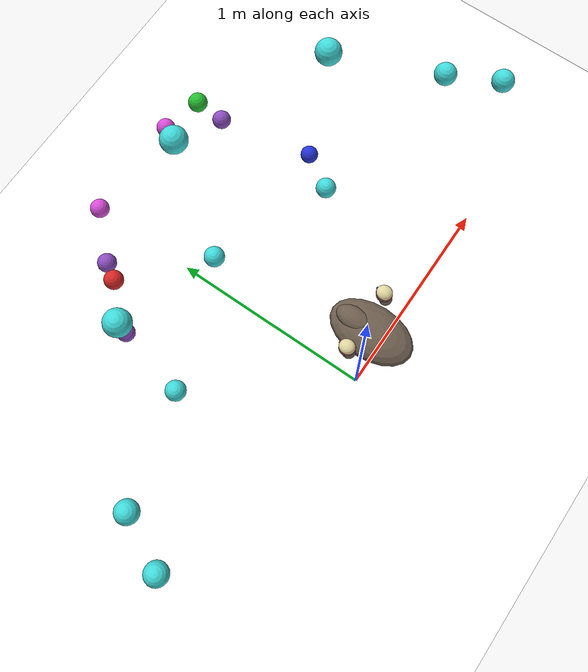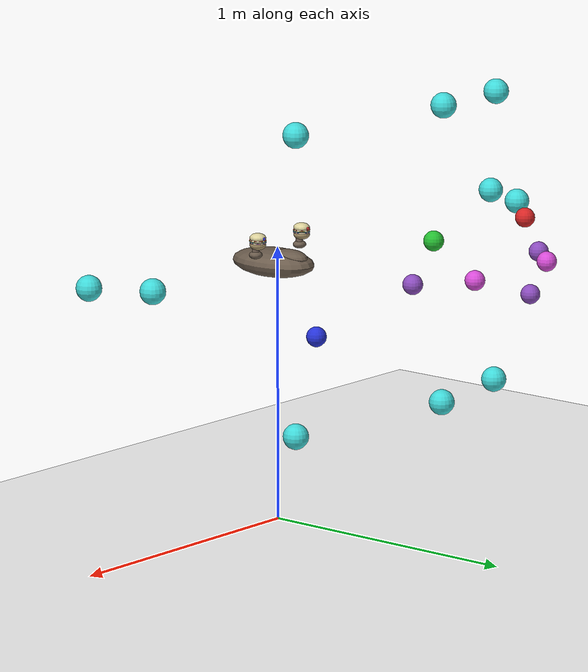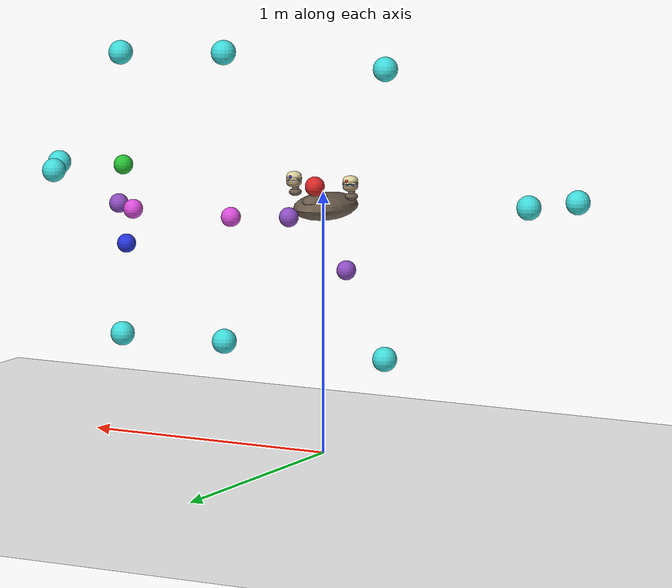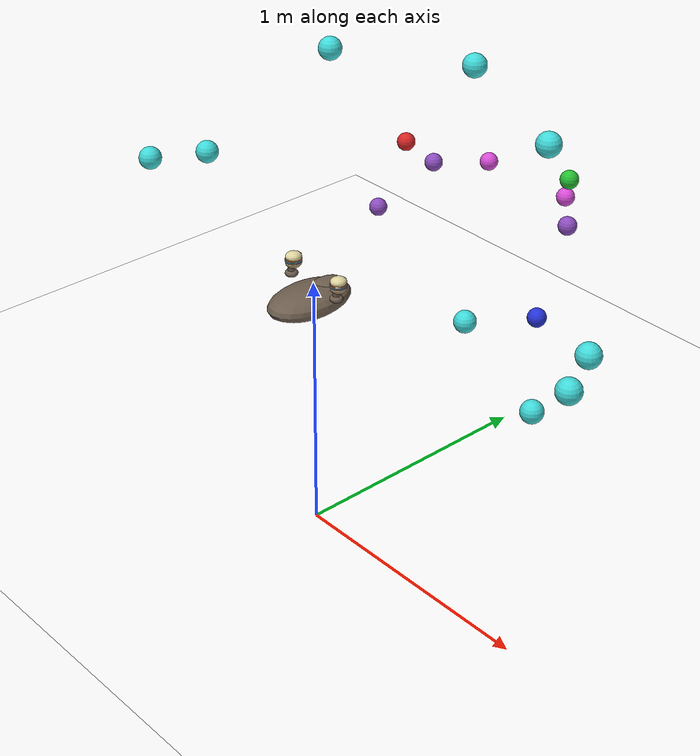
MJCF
<mujoco model="stomatopod_eyes_hard">

  <compiler angle="radian" coordinate="local" autolimits="true"/>

  <option timestep="0.002"
          gravity="0 0 0"
          integrator="implicitfast"/>

  <visual>
    <global offwidth="1024" offheight="768"/>
    <quality shadowsize="4096"/>
  </visual>

  <default>
    <geom contype="0" conaffinity="0" group="1"/>
    <joint armature="0.001" damping="0.10"/>
    <motor ctrllimited="true" ctrlrange="-1.0 1.0" gear="1"/>
    <site size="0.015" rgba="0 1 0 1"/>
  </default>

  <asset>
    <texture name="skybox" type="skybox" builtin="gradient"
             rgb1="0.55 0.62 0.72" rgb2="0.18 0.20 0.27"
             width="256" height="256"/>
    <texture name="groundplane" type="2d" builtin="checker"
             rgb1="0.32 0.34 0.38" rgb2="0.20 0.22 0.25"
             width="512" height="512" mark="cross" markrgb="0.45 0.48 0.52"/>
    <material name="groundplane" texture="groundplane"
              texuniform="true" texrepeat="6 6" reflectance="0.05"/>

    <material name="carapace" rgba="0.42 0.36 0.30 1"
              specular="0.15" shininess="0.20" reflectance="0.02"/>
    <material name="eyeball"  rgba="0.93 0.87 0.72 1"
              specular="0.35" shininess="0.55" reflectance="0.05"/>
    <material name="midband"  rgba="0.16 0.10 0.08 1"
              specular="0.10" shininess="0.20"/>
    <material name="ventral"  rgba="0.70 0.60 0.48 1"
              specular="0.25" shininess="0.30"/>
    <material name="eye_L_id" rgba="0.85 0.20 0.20 1"
              specular="0.35" shininess="0.55"/>
    <material name="eye_R_id" rgba="0.20 0.20 0.85 1"
              specular="0.35" shininess="0.55"/>

    <material name="eye_dorsal"  rgba="0.87 0.83 0.62 1"
              specular="0.35" shininess="0.55" reflectance="0.05"/>
    <material name="eye_ventral" rgba="0.64 0.56 0.40 1"
              specular="0.30" shininess="0.45" reflectance="0.04"/>

    <material name="midband_base" rgba="0.09 0.07 0.06 1"
              specular="0.10" shininess="0.20"/>
    <material name="mb_row1" rgba="0.82 0.17 0.15 1" specular="0.25" shininess="0.35"/>
    <material name="mb_row2" rgba="0.90 0.55 0.16 1" specular="0.25" shininess="0.35"/>
    <material name="mb_row3" rgba="0.32 0.70 0.26 1" specular="0.25" shininess="0.35"/>
    <material name="mb_row4" rgba="0.18 0.38 0.82 1" specular="0.25" shininess="0.35"/>
    <material name="mb_row5" rgba="0.20 0.82 0.78 1" specular="0.70" shininess="0.85" reflectance="0.25"/>
    <material name="mb_row6" rgba="0.80 0.32 0.84 1" specular="0.70" shininess="0.85" reflectance="0.25"/>

    <!-- Segmented eyestalk that carries the eye. Cosmetic. -->
    <material name="eyestalk" rgba="0.44 0.37 0.32 1"
              specular="0.20" shininess="0.30"/>
  </asset>

    <worldbody>

    <geom name="floor" pos="0 0 0" size="3 3 0.05" type="plane"
          material="groundplane" rgba="1 1 1 1"
          contype="0" conaffinity="0"/>

    <!-- Three-light setup: key (high front-left, casts shadows), fill
         (lower right, no shadows), back (rim from behind). -->
    <light name="key_light"   pos="-0.8  -1.2  2.4" dir="0.3 0.7 -0.8"
           diffuse="0.55 0.55 0.55" specular="0.25 0.25 0.25"
           castshadow="true"/>
    <light name="fill_light"  pos=" 1.4  -0.8  1.8" dir="-0.4 0.5 -0.6"
           diffuse="0.32 0.32 0.34" specular="0.10 0.10 0.10"
           castshadow="false"/>
    <light name="back_light"  pos=" 0.0   1.6  2.2" dir="0 -0.7 -0.8"
           diffuse="0.18 0.20 0.24" specular="0.05 0.05 0.05"
           castshadow="false"/>

<!-- ===================== HEAD + EYES (unchanged) ==================== -->
    <!-- overview: high 3/4 view — best "what's going on" angle -->
    <camera name="overview"
            pos="0 -1.6 1.7"
            xyaxes="1 0 0  0 0.275 0.962"
            fovy="45"/>
    <!-- cinematic: side-front hero shot, low angle, foregrounds the head -->
    <camera name="cinematic"
            pos="0.9 -1.0 1.20"
            xyaxes="0.789 0.614 0  -0.054 0.069 0.996"
            fovy="42"/>
    <!-- close_left / close_right: tight on each eye tower for FoV overlays -->
    <camera name="close_left"
            pos="-0.45 -0.55 1.20"
            xyaxes="0.915 -0.403 0  0.073 0.165 0.984"
            fovy="35"/>
    <camera name="close_right"
            pos="0.45 -0.55 1.20"
            xyaxes="0.915 0.403 0  -0.073 0.165 0.984"
            fovy="35"/>

    <body name="head" pos="0 0 1.0">

      <geom name="head_carapace"
            type="ellipsoid" size="0.105 0.170 0.050"
            pos="0 -0.020 -0.058"
            material="carapace"
            contype="0" conaffinity="0"/>
      <!-- Rostral plate: the pointed shield between the two eyestalks. -->
      <geom name="head_rostrum"
            type="ellipsoid" size="0.045 0.075 0.028"
            pos="0 0.055 -0.030"
            material="carapace"
            contype="0" conaffinity="0"/>
      <!-- Sockets where each eyestalk emerges from the carapace. -->
      <geom name="head_socket_L"
            type="ellipsoid" size="0.024 0.024 0.014"
            pos="-0.12 0 -0.010"
            material="carapace"
            contype="0" conaffinity="0"/>
      <geom name="head_socket_R"
            type="ellipsoid" size="0.024 0.024 0.014"
            pos="0.12 0 -0.010"
            material="carapace"
            contype="0" conaffinity="0"/>

      <body name="eye_L_yaw_link" pos="-0.12 0 0">
        <joint name="eye_L_yaw"   type="hinge" axis="0 0 1"
               range="-1.57 1.57"/>
        <!-- Short stalk cylinder (visible even when the eye is at rest) -->
        <geom  name="eye_L_yaw_geom"
               type="cylinder" size="0.013 0.020"
               material="eyestalk"
               contype="0" conaffinity="0"/>

        <body name="eye_L_pitch_link" pos="0 0 0.020">
          <joint name="eye_L_pitch" type="hinge" axis="0 1 0"
                 range="-1.05 1.05"/>
          <geom  name="eye_L_pitch_geom"
                 type="cylinder" size="0.011 0.020"
                 material="eyestalk"
                 contype="0" conaffinity="0"/>

          <body name="eye_L" pos="0 0 0.020">
            <joint name="eye_L_roll" type="hinge" axis="1 0 0"
                   range="-3.14 3.14"/>

            <!-- Smooth base sphere so the eye is always solid. -->
            <geom name="eye_L_ball"
                  type="ellipsoid" size="0.028 0.030 0.028"
                  pos="0 0.010 0"
                  material="eyeball"
                  contype="0" conaffinity="0"/>

            <!-- Dorsal hemisphere cap (lighter/greener): the DH. -->
            <geom name="eye_L_dorsal"
                  type="ellipsoid" size="0.0284 0.0304 0.0175"
                  pos="0 0.010 0.0125"
                  material="eye_dorsal"
                  contype="0" conaffinity="0"/>

            <!-- Ventral hemisphere cap (darker): the VH. -->
            <geom name="eye_L_ventral"
                  type="ellipsoid" size="0.0284 0.0304 0.0175"
                  pos="0 0.010 -0.0125"
                  material="eye_ventral"
                  contype="0" conaffinity="0"/>

            <!-- Dark base stripe the six rows sit on (fills the gaps so
                 the inter-row boundaries read as thin dark lines). -->
            <geom name="eye_L_midband_base"
                  type="ellipsoid" size="0.0286 0.0306 0.0072"
                  pos="0 0.010 0"
                  material="midband_base"
                  contype="0" conaffinity="0"/>

            <!-- The six midband rows, dorsal (row1) to ventral (row6).
                 Rows 1-4 are the spectral rows; rows 5-6 the polarisation
                 (quarter-wave / circular-polarisation) rows. -->
            <geom name="eye_L_mb_row1" type="ellipsoid" size="0.0292 0.0312 0.00085"
                  pos="0 0.010  0.00542" material="mb_row1" contype="0" conaffinity="0"/>
            <geom name="eye_L_mb_row2" type="ellipsoid" size="0.0292 0.0312 0.00085"
                  pos="0 0.010  0.00325" material="mb_row2" contype="0" conaffinity="0"/>
            <geom name="eye_L_mb_row3" type="ellipsoid" size="0.0292 0.0312 0.00085"
                  pos="0 0.010  0.00108" material="mb_row3" contype="0" conaffinity="0"/>
            <geom name="eye_L_mb_row4" type="ellipsoid" size="0.0292 0.0312 0.00085"
                  pos="0 0.010 -0.00108" material="mb_row4" contype="0" conaffinity="0"/>
            <geom name="eye_L_mb_row5" type="ellipsoid" size="0.0292 0.0312 0.00085"
                  pos="0 0.010 -0.00325" material="mb_row5" contype="0" conaffinity="0"/>
            <geom name="eye_L_mb_row6" type="ellipsoid" size="0.0292 0.0312 0.00085"
                  pos="0 0.010 -0.00542" material="mb_row6" contype="0" conaffinity="0"/>

            <geom name="eye_L_id_spot"
                  type="sphere" size="0.006"
                  pos="0 0.038 0.012"
                  material="eye_L_id"
                  contype="0" conaffinity="0"/>

            <!-- Two sites read by sensor.py (do not move these):
                 - eye_L_center: gimbal centre for Jacobians.
                 - eye_L_axis:   1 cm ahead; defines forward vector. -->
            <site name="eye_L_center" pos="0 0 0"      rgba="0 1 0 0"/>
            <site name="eye_L_axis"   pos="0 0.05 0"   rgba="1 1 0 0"/>
          </body>
        </body>
      </body>

      <body name="eye_R_yaw_link" pos="0.12 0 0">
        <joint name="eye_R_yaw"   type="hinge" axis="0 0 1"
               range="-1.57 1.57"/>
        <!-- Short stalk cylinder (visible even when the eye is at rest) -->
        <geom  name="eye_R_yaw_geom"
               type="cylinder" size="0.013 0.020"
               material="eyestalk"
               contype="0" conaffinity="0"/>

        <body name="eye_R_pitch_link" pos="0 0 0.020">
          <joint name="eye_R_pitch" type="hinge" axis="0 1 0"
                 range="-1.05 1.05"/>
          <geom  name="eye_R_pitch_geom"
                 type="cylinder" size="0.011 0.020"
                 material="eyestalk"
                 contype="0" conaffinity="0"/>

          <body name="eye_R" pos="0 0 0.020">
            <joint name="eye_R_roll" type="hinge" axis="1 0 0"
                   range="-3.14 3.14"/>

            <!-- Smooth base sphere so the eye is always solid. -->
            <geom name="eye_R_ball"
                  type="ellipsoid" size="0.028 0.030 0.028"
                  pos="0 0.010 0"
                  material="eyeball"
                  contype="0" conaffinity="0"/>

            <!-- Dorsal hemisphere cap (lighter/greener): the DH. -->
            <geom name="eye_R_dorsal"
                  type="ellipsoid" size="0.0284 0.0304 0.0175"
                  pos="0 0.010 0.0125"
                  material="eye_dorsal"
                  contype="0" conaffinity="0"/>

            <!-- Ventral hemisphere cap (darker): the VH. -->
            <geom name="eye_R_ventral"
                  type="ellipsoid" size="0.0284 0.0304 0.0175"
                  pos="0 0.010 -0.0125"
                  material="eye_ventral"
                  contype="0" conaffinity="0"/>

            <!-- Dark base stripe the six rows sit on (fills the gaps so
                 the inter-row boundaries read as thin dark lines). -->
            <geom name="eye_R_midband_base"
                  type="ellipsoid" size="0.0286 0.0306 0.0072"
                  pos="0 0.010 0"
                  material="midband_base"
                  contype="0" conaffinity="0"/>

            <!-- The six midband rows, dorsal (row1) to ventral (row6).
                 Rows 1-4 are the spectral rows; rows 5-6 the polarisation
                 (quarter-wave / circular-polarisation) rows. -->
            <geom name="eye_R_mb_row1" type="ellipsoid" size="0.0292 0.0312 0.00085"
                  pos="0 0.010  0.00542" material="mb_row1" contype="0" conaffinity="0"/>
            <geom name="eye_R_mb_row2" type="ellipsoid" size="0.0292 0.0312 0.00085"
                  pos="0 0.010  0.00325" material="mb_row2" contype="0" conaffinity="0"/>
            <geom name="eye_R_mb_row3" type="ellipsoid" size="0.0292 0.0312 0.00085"
                  pos="0 0.010  0.00108" material="mb_row3" contype="0" conaffinity="0"/>
            <geom name="eye_R_mb_row4" type="ellipsoid" size="0.0292 0.0312 0.00085"
                  pos="0 0.010 -0.00108" material="mb_row4" contype="0" conaffinity="0"/>
            <geom name="eye_R_mb_row5" type="ellipsoid" size="0.0292 0.0312 0.00085"
                  pos="0 0.010 -0.00325" material="mb_row5" contype="0" conaffinity="0"/>
            <geom name="eye_R_mb_row6" type="ellipsoid" size="0.0292 0.0312 0.00085"
                  pos="0 0.010 -0.00542" material="mb_row6" contype="0" conaffinity="0"/>

            <geom name="eye_R_id_spot"
                  type="sphere" size="0.006"
                  pos="0 0.038 0.012"
                  material="eye_R_id"
                  contype="0" conaffinity="0"/>

            <!-- Two sites read by sensor.py (do not move these):
                 - eye_R_center: gimbal centre for Jacobians.
                 - eye_R_axis:   1 cm ahead; defines forward vector. -->
            <site name="eye_R_center" pos="0 0 0"      rgba="0 1 0 0"/>
            <site name="eye_R_axis"   pos="0 0.05 0"   rgba="1 1 0 0"/>
          </body>
        </body>
      </body>

    </body>

    <body name="target_R_1" pos="-0.4 0.8 1.15">
      <geom name="target_R_1_geom" type="sphere" size="0.035"
            rgba="0.85 0.15 0.15 1" contype="0" conaffinity="0"/>
      <site name="target_R_1_site" pos="0 0 0" rgba="1 1 1 0"/>
    </body>
    <body name="target_G_1" pos="0.3 0.95 1.2">
      <geom name="target_G_1_geom" type="sphere" size="0.035"
            rgba="0.15 0.75 0.20 1" contype="0" conaffinity="0"/>
      <site name="target_G_1_site" pos="0 0 0" rgba="1 1 1 0"/>
    </body>
    <body name="target_B_1" pos="0.5 0.6 0.85">
      <geom name="target_B_1_geom" type="sphere" size="0.035"
            rgba="0.15 0.20 0.85 1" contype="0" conaffinity="0"/>
      <site name="target_B_1_site" pos="0 0 0" rgba="1 1 1 0"/>
    </body>
    <body name="target_UVA_1" pos="-0.5 0.75 0.85">
      <geom name="target_UVA_1_geom" type="sphere" size="0.035"
            rgba="0.55 0.30 0.75 1" contype="0" conaffinity="0"/>
      <site name="target_UVA_1_site" pos="0 0 0" rgba="1 1 1 0"/>
    </body>
    <body name="target_UVA_dL" pos="-0.35 0.9 1.05">
      <geom name="target_UVA_dL_geom" type="sphere" size="0.035"
            rgba="0.55 0.30 0.75 1" contype="0" conaffinity="0"/>
      <site name="target_UVA_dL_site" pos="0 0 0" rgba="1 1 1 0"/>
    </body>
    <body name="target_UVA_dR" pos="0.35 0.9 1.05">
      <geom name="target_UVA_dR_geom" type="sphere" size="0.035"
            rgba="0.55 0.30 0.75 1" contype="0" conaffinity="0"/>
      <site name="target_UVA_dR_site" pos="0 0 0" rgba="1 1 1 0"/>
    </body>
    <body name="target_UVB_dL" pos="-0.2 1.05 1.06">
      <geom name="target_UVB_dL_geom" type="sphere" size="0.035"
            rgba="0.85 0.30 0.85 1" contype="0" conaffinity="0"/>
      <site name="target_UVB_dL_site" pos="0 0 0" rgba="1 1 1 0"/>
    </body>
    <body name="target_UVB_dR" pos="0.2 1.05 1.06">
      <geom name="target_UVB_dR_geom" type="sphere" size="0.035"
            rgba="0.85 0.30 0.85 1" contype="0" conaffinity="0"/>
      <site name="target_UVB_dR_site" pos="0 0 0" rgba="1 1 1 0"/>
    </body>
    <body name="target_UVpol_FU" pos="0.0 0.75 1.6">
      <geom name="target_UVpol_FU_geom" type="sphere" size="0.045"
            rgba="0.25 0.85 0.85 1" contype="0" conaffinity="0"/>
      <site name="target_UVpol_FU_site" pos="0 0 0" rgba="1 1 1 0"/>
    </body>
    <body name="target_UVpol_FD" pos="0.0 0.75 0.55">
      <geom name="target_UVpol_FD_geom" type="sphere" size="0.045"
            rgba="0.25 0.85 0.85 1" contype="0" conaffinity="0"/>
      <site name="target_UVpol_FD_site" pos="0 0 0" rgba="1 1 1 0"/>
    </body>
    <body name="target_UVpol_LU" pos="-0.55 0.55 1.55">
      <geom name="target_UVpol_LU_geom" type="sphere" size="0.045"
            rgba="0.25 0.85 0.85 1" contype="0" conaffinity="0"/>
      <site name="target_UVpol_LU_site" pos="0 0 0" rgba="1 1 1 0"/>
    </body>
    <body name="target_UVpol_RU" pos="0.55 0.55 1.55">
      <geom name="target_UVpol_RU_geom" type="sphere" size="0.045"
            rgba="0.25 0.85 0.85 1" contype="0" conaffinity="0"/>
      <site name="target_UVpol_RU_site" pos="0 0 0" rgba="1 1 1 0"/>
    </body>
    <body name="target_UVpol_LD" pos="-0.55 0.55 0.5">
      <geom name="target_UVpol_LD_geom" type="sphere" size="0.045"
            rgba="0.25 0.85 0.85 1" contype="0" conaffinity="0"/>
      <site name="target_UVpol_LD_site" pos="0 0 0" rgba="1 1 1 0"/>
    </body>
    <body name="target_UVpol_RD" pos="0.55 0.55 0.5">
      <geom name="target_UVpol_RD_geom" type="sphere" size="0.045"
            rgba="0.25 0.85 0.85 1" contype="0" conaffinity="0"/>
      <site name="target_UVpol_RD_site" pos="0 0 0" rgba="1 1 1 0"/>
    </body>
    <body name="target_UVpol_FL" pos="-1.0 0.3 1.05">
      <geom name="target_UVpol_FL_geom" type="sphere" size="0.045"
            rgba="0.25 0.85 0.85 1" contype="0" conaffinity="0"/>
      <site name="target_UVpol_FL_site" pos="0 0 0" rgba="1 1 1 0"/>
    </body>
    <body name="target_UVpol_FR" pos="1.0 0.3 1.05">
      <geom name="target_UVpol_FR_geom" type="sphere" size="0.045"
            rgba="0.25 0.85 0.85 1" contype="0" conaffinity="0"/>
      <site name="target_UVpol_FR_site" pos="0 0 0" rgba="1 1 1 0"/>
    </body>
    <body name="target_UVpol_BL" pos="-1.1 0.1 1.05">
      <geom name="target_UVpol_BL_geom" type="sphere" size="0.045"
            rgba="0.25 0.85 0.85 1" contype="0" conaffinity="0"/>
      <site name="target_UVpol_BL_site" pos="0 0 0" rgba="1 1 1 0"/>
    </body>
    <body name="target_UVpol_BR" pos="1.1 0.1 1.05">
      <geom name="target_UVpol_BR_geom" type="sphere" size="0.045"
            rgba="0.25 0.85 0.85 1" contype="0" conaffinity="0"/>
      <site name="target_UVpol_BR_site" pos="0 0 0" rgba="1 1 1 0"/>
    </body>

  </worldbody>

  <actuator>
    <motor name="m_eye_L_yaw"   joint="eye_L_yaw"   ctrlrange="-1 1"/>
    <motor name="m_eye_L_pitch" joint="eye_L_pitch" ctrlrange="-1 1"/>
    <motor name="m_eye_L_roll"  joint="eye_L_roll"  ctrlrange="-1 1"/>

    <motor name="m_eye_R_yaw"   joint="eye_R_yaw"   ctrlrange="-1 1"/>
    <motor name="m_eye_R_pitch" joint="eye_R_pitch" ctrlrange="-1 1"/>
    <motor name="m_eye_R_roll"  joint="eye_R_roll"  ctrlrange="-1 1"/>
  </actuator>

  <sensor>
    <jointpos name="sp_eye_L_yaw"   joint="eye_L_yaw"/>
    <jointpos name="sp_eye_L_pitch" joint="eye_L_pitch"/>
    <jointpos name="sp_eye_L_roll"  joint="eye_L_roll"/>
    <jointpos name="sp_eye_R_yaw"   joint="eye_R_yaw"/>
    <jointpos name="sp_eye_R_pitch" joint="eye_R_pitch"/>
    <jointpos name="sp_eye_R_roll"  joint="eye_R_roll"/>

    <jointvel name="sv_eye_L_yaw"   joint="eye_L_yaw"/>
    <jointvel name="sv_eye_L_pitch" joint="eye_L_pitch"/>
    <jointvel name="sv_eye_L_roll"  joint="eye_L_roll"/>
    <jointvel name="sv_eye_R_yaw"   joint="eye_R_yaw"/>
    <jointvel name="sv_eye_R_pitch" joint="eye_R_pitch"/>
    <jointvel name="sv_eye_R_roll"  joint="eye_R_roll"/>
  </sensor>

</mujoco>
